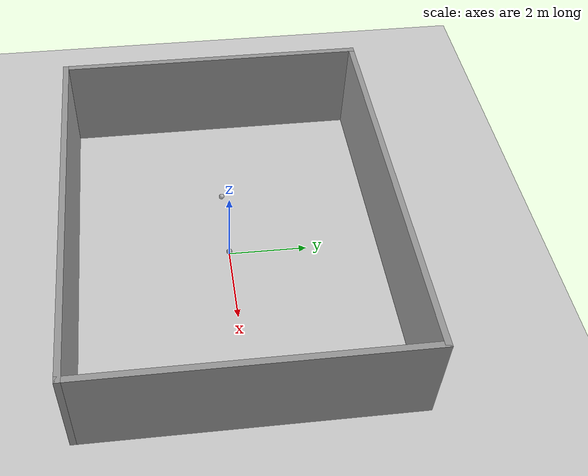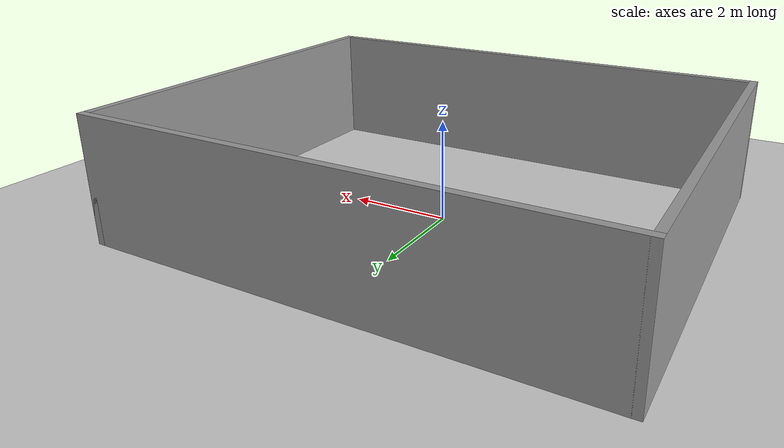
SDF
<sdf version="1.6">
 <world name="__default__">
  <gravity>0 0 -9.8</gravity>
  <magnetic_field>6e-06 2.3e-05 -4.2e-05</magnetic_field>
  <atmosphere type="adiabatic"/>
  <physics name="default_physics" default="0" type="ode">
   <max_step_size>0.001</max_step_size>
   <real_time_factor>1</real_time_factor>
   <real_time_update_rate>1000</real_time_update_rate>
  </physics>
  <scene><ambient>0.4 0.4 0.4 1</ambient><background>0.7 0.7 0.7 1</background><shadows>1</shadows></scene>
  <spherical_coordinates>
   <surface_model>EARTH_WGS84</surface_model>
   <latitude_deg>0</latitude_deg>
   <longitude_deg>0</longitude_deg>
   <elevation>0</elevation>
   <heading_deg>0</heading_deg>
  </spherical_coordinates>
  <model name="Voliere_sans_plafond">
   <link name="Wall_0">
    <collision name="Wall_0_Collision">
     <geometry><box><size>10 0.15 2.5</size></box></geometry>
     <pose>0 0 1.25 0 -0 0</pose>
    </collision>
    <visual name="Wall_0_Visual">
     <pose>0 0 1.25 0 -0 0</pose>
     <geometry><box><size>10 0.15 2.5</size></box></geometry>
     <material>
      <script><uri>file://media/materials/scripts/gazebo.material</uri><name>Gazebo/Grey</name></script>
      <ambient>1 1 1 1</ambient>
     </material>
    </visual>
    <pose>0 3.925 0 0 -0 0</pose>
   </link>
   <link name="Wall_1">
    <collision name="Wall_1_Collision">
     <geometry><box><size>8 0.15 2.5</size></box></geometry>
     <pose>0 0 1.25 0 -0 0</pose>
    </collision>
    <visual name="Wall_1_Visual">
     <pose>0 0 1.25 0 -0 0</pose>
     <geometry><box><size>8 0.15 2.5</size></box></geometry>
     <material>
      <script><uri>file://media/materials/scripts/gazebo.material</uri><name>Gazebo/Grey</name></script>
      <ambient>1 1 1 1</ambient>
     </material>
    </visual>
    <pose>4.925 0 0 0 0 -1.5708</pose>
   </link>
   <link name="Wall_2">
    <collision name="Wall_2_Collision">
     <geometry><box><size>10 0.15 2.5</size></box></geometry>
     <pose>0 0 1.25 0 -0 0</pose>
    </collision>
    <visual name="Wall_2_Visual">
     <pose>0 0 1.25 0 -0 0</pose>
     <geometry><box><size>10 0.15 2.5</size></box></geometry>
     <material>
      <script><uri>file://media/materials/scripts/gazebo.material</uri><name>Gazebo/Grey</name></script>
      <ambient>1 1 1 1</ambient>
     </material>
    </visual>
    <pose>0 -3.925 0 0 -0 3.14159</pose>
   </link>
   <link name="Wall_3">
    <collision name="Wall_3_Collision">
     <geometry><box><size>8 0.15 2.5</size></box></geometry>
     <pose>0 0 1.25 0 -0 0</pose>
    </collision>
    <visual name="Wall_3_Visual">
     <pose>0 0 1.25 0 -0 0</pose>
     <geometry><box><size>8 0.15 2.5</size></box></geometry>
     <material>
      <script><uri>file://media/materials/scripts/gazebo.material</uri><name>Gazebo/Grey</name></script>
      <ambient>1 1 1 1</ambient>
     </material>
    </visual>
    <pose>-4.925 0 0 0 -0 1.5708</pose>
   </link>
   <static>1</static>
  </model>
  <model name="ground_plane">
   <static>1</static>
   <link name="link">
    <collision name="collision">
     <geometry><plane><normal>0 0 1</normal><size>100 100</size></plane></geometry>
     <surface><friction><ode><mu>100</mu><mu2>50</mu2></ode></friction></surface>
    </collision>
    <visual name="visual">
     <cast_shadows>0</cast_shadows>
     <geometry><plane><normal>0 0 1</normal><size>100 100</size></plane></geometry>
     <material>
      <script><uri>file://media/materials/scripts/gazebo.material</uri><name>Gazebo/Grey</name></script>
     </material>
    </visual>
   </link>
   <pose>-0.771393 1.03171 0 0 -0 0</pose>
  </model>
  <light name="user_directional_light_0" type="directional">
   <pose>-14.0924 10.3385 1 0 -0 0</pose>
   <diffuse>0.5 0.5 0.5 1</diffuse>
   <specular>0.1 0.1 0.1 1</specular>
   <direction>0.1 0.1 -0.9</direction>
   <attenuation>
    <range>20</range>
    <constant>0.5</constant>
    <linear>0.01</linear>
    <quadratic>0.001</quadratic>
   </attenuation>
  </light>
  <model name="objectif">
   <link name="objectif::link_0">
    <inertial>
     <mass>0.00296621</mass>
     <inertia>
      <ixx>6.12356e-06</ixx>
      <ixy>0</ixy>
      <ixz>0</ixz>
      <iyy>6.12356e-06</iyy>
      <iyz>0</iyz>
      <izz>6.12356e-06</izz>
     </inertia>
    </inertial>
    <visual name="visual">
     <geometry><sphere><radius>0.0718414</radius></sphere></geometry>
     <material>
      <lighting>1</lighting>
      <script><uri>file://media/materials/scripts/gazebo.material</uri><name>Gazebo/Grey</name></script>
      <ambient>0.3 0.3 0.3 1</ambient>
      <diffuse>0.7 0.7 0.7 1</diffuse>
      <specular>0.01 0.01 0.01 1</specular>
      <emissive>0 0 0 1</emissive>
     </material>
    </visual>
    <collision name="collision">
     <geometry><sphere><radius>0.071841</radius></sphere></geometry>
     <surface>
      <friction>
       <ode><mu>1</mu><mu2>1</mu2><fdir1>0 0 0</fdir1><slip1>0</slip1><slip2>0</slip2></ode>
       <torsional>
        <coefficient>1</coefficient>
        <patch_radius>0</patch_radius>
        <surface_radius>0</surface_radius>
        <use_patch_radius>1</use_patch_radius>
        <ode><slip>0</slip></ode>
       </torsional>
      </friction>
      <bounce><restitution_coefficient>0</restitution_coefficient><threshold>1e+06</threshold></bounce>
      <contact>
       <collide_without_contact>0</collide_without_contact>
       <collide_without_contact_bitmask>1</collide_without_contact_bitmask>
       <collide_bitmask>1</collide_bitmask>
       <ode>
        <soft_cfm>0</soft_cfm>
        <soft_erp>0.2</soft_erp>
        <kp>1e+13</kp>
        <kd>1</kd>
        <max_vel>0.01</max_vel>
        <min_depth>0</min_depth>
       </ode>
       <bullet>
        <split_impulse>1</split_impulse>
        <split_impulse_penetration_threshold>-0.01</split_impulse_penetration_threshold>
        <soft_cfm>0</soft_cfm>
        <soft_erp>0.2</soft_erp>
        <kp>1e+13</kp>
        <kd>1</kd>
       </bullet>
      </contact>
     </surface>
    </collision>
    <gravity>0</gravity>
   </link>
   <static>0</static>
   <pose>0 0 0.1 0 -0 0</pose>
  </model>
  <model name="obj_leader">
   <link name="obj_leader::frc2016_ball::link">
    <inertial>
     <mass>0.213</mass>
     <inertia>
      <ixx>0.00322667</ixx>
      <ixy>0</ixy>
      <ixz>0</ixz>
      <iyy>0.00322667</iyy>
      <iyz>0</iyz>
      <izz>0.00322667</izz>
     </inertia>
    </inertial>
    <visual name="visual"><geometry><sphere><radius>0.0706963</radius></sphere></geometry></visual>
    <collision name="collision">
     <geometry><sphere><radius>0.070696</radius></sphere></geometry>
     <surface>
      <friction>
       <ode><mu>1</mu><mu2>1</mu2><fdir1>0 0 0</fdir1><slip1>0</slip1><slip2>0</slip2></ode>
       <torsional>
        <coefficient>1</coefficient>
        <patch_radius>0</patch_radius>
        <surface_radius>0</surface_radius>
        <use_patch_radius>1</use_patch_radius>
        <ode><slip>0</slip></ode>
       </torsional>
      </friction>
      <bounce><restitution_coefficient>0.15937</restitution_coefficient><threshold>0</threshold></bounce>
      <contact>
       <collide_without_contact>0</collide_without_contact>
       <collide_without_contact_bitmask>1</collide_without_contact_bitmask>
       <collide_bitmask>1</collide_bitmask>
       <ode>
        <soft_cfm>0</soft_cfm>
        <soft_erp>0.2</soft_erp>
        <kp>1e+13</kp>
        <kd>1</kd>
        <max_vel>100</max_vel>
        <min_depth>0.001</min_depth>
       </ode>
       <bullet>
        <split_impulse>1</split_impulse>
        <split_impulse_penetration_threshold>-0.01</split_impulse_penetration_threshold>
        <soft_cfm>0</soft_cfm>
        <soft_erp>0.2</soft_erp>
        <kp>1e+13</kp>
        <kd>1</kd>
       </bullet>
      </contact>
     </surface>
    </collision>
    <gravity>0</gravity>
   </link>
   <static>0</static>
   <pose>-2 0 0.070571 0 -0 0</pose>
  </model>
 </world>
</sdf>
